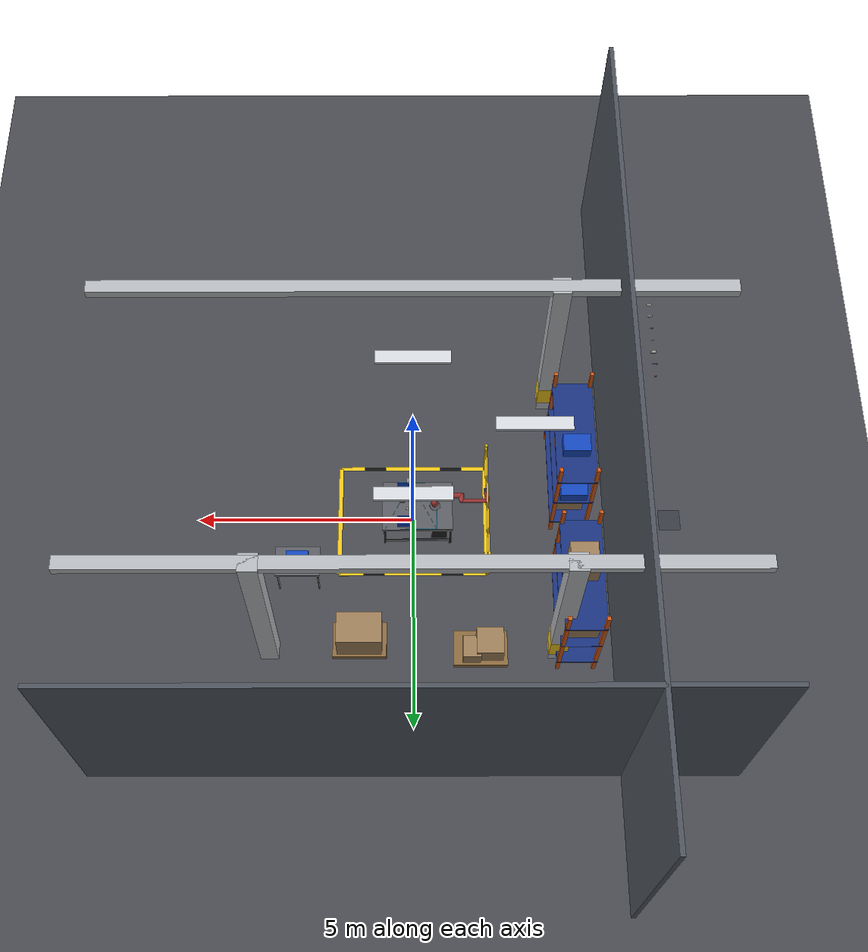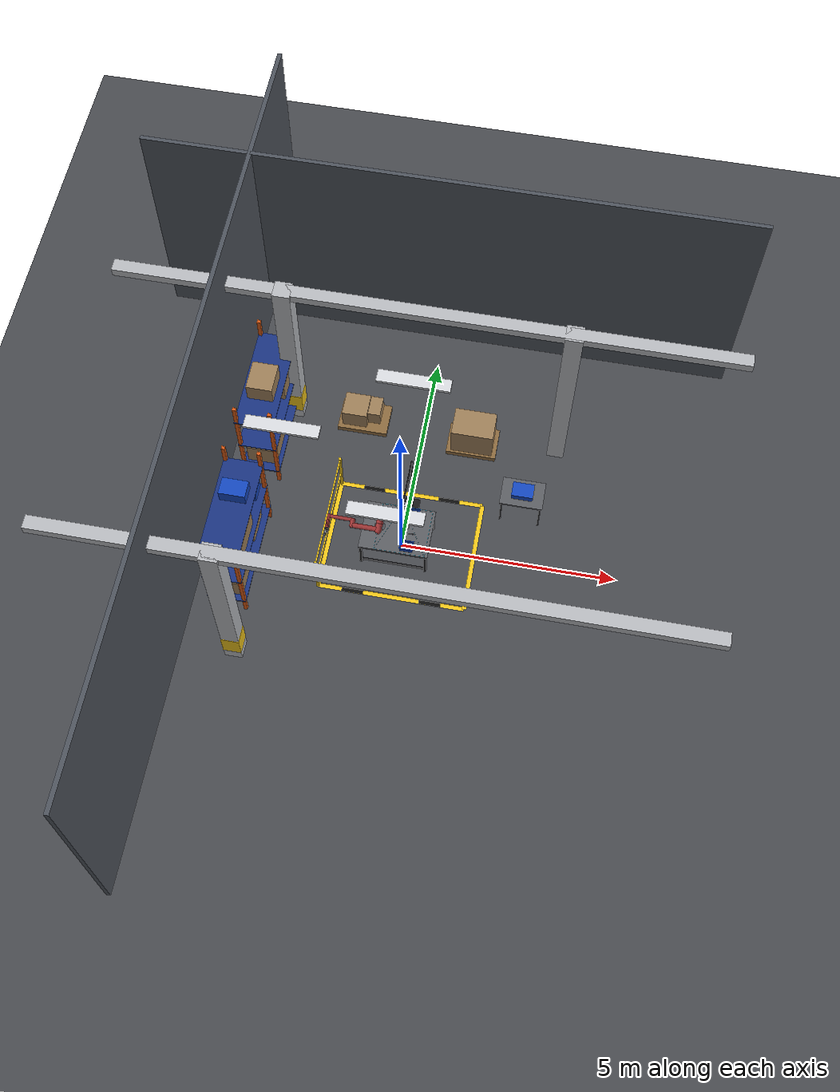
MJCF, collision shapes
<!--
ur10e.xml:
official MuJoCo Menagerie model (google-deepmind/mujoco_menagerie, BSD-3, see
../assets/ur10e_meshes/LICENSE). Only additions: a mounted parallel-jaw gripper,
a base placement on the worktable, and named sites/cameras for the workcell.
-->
<mujoco model="volvo_sorting_workcell">
  <include file="../robots/ur10e.xml"/>

  <option timestep="0.001" integrator="implicitfast" cone="elliptic" impratio="10" noslip_iterations="3"/>

  <visual>
    <global offwidth="1280" offheight="960" azimuth="150" elevation="-25"/>
    <quality shadowsize="4096" offsamples="4"/>
    <headlight ambient="0.35 0.35 0.38" diffuse="0.45 0.45 0.45" specular="0.1 0.1 0.1"/>
    <map znear="0.01" zfar="60" shadowclip="3" shadowscale="0.6"/>
    <rgba haze="0.12 0.13 0.15 1"/>
  </visual>

  <statistic center="0.0 0 0.9" extent="2.4"/>

  <asset>
    <texture type="skybox" builtin="gradient" rgb1="0.16 0.17 0.19" rgb2="0.05 0.05 0.06" width="512" height="3072"/>
    <texture name="floor_tex" type="2d" builtin="checker" rgb1="0.30 0.31 0.33" rgb2="0.26 0.27 0.29" mark="edge" markrgb="0.36 0.37 0.39" width="512" height="512"/>
    <material name="floor_mat" texture="floor_tex" texrepeat="12 12" texuniform="true" reflectance="0.15" specular="0.2" shininess="0.3"/>
    <texture name="wall_tex" type="2d" builtin="flat" rgb1="0.55 0.57 0.60" width="64" height="64"/>
    <material name="wall_mat" texture="wall_tex" rgba="0.55 0.57 0.60 1"/>
    <material name="table_mat" rgba="0.36 0.37 0.39 1" specular="0.4" shininess="0.5" reflectance="0.1"/>
    <material name="table_frame_mat" rgba="0.12 0.12 0.13 1" specular="0.3"/>
    <material name="bin_blue" rgba="0.08 0.28 0.75 1" specular="0.3" shininess="0.4"/>
    <material name="bin_blue_dark" rgba="0.06 0.20 0.55 1"/>
    <material name="steel_dark" rgba="0.30 0.31 0.33 1" specular="0.8" shininess="0.8"/>
    <material name="steel_zinc" rgba="0.62 0.63 0.60 1" specular="0.9" shininess="0.7"/>
    <material name="safety_yellow" rgba="0.95 0.78 0.10 1"/>
    <material name="safety_black" rgba="0.05 0.05 0.05 1"/>
    <material name="rack_orange" rgba="0.85 0.35 0.08 1"/>
    <material name="rack_blue" rgba="0.10 0.20 0.50 1"/>
    <material name="pallet_wood" rgba="0.55 0.42 0.25 1"/>
    <material name="cardboard" rgba="0.62 0.50 0.35 1"/>
    <material name="column_mat" rgba="0.72 0.73 0.75 1" specular="0.2"/>
    <material name="fixture_mat" rgba="0.85 0.86 0.88 1" emission="0.9"/>
    <material name="tripod_mat" rgba="0.10 0.10 0.11 1" specular="0.5"/>
    <material name="camera_body_mat" rgba="0.74 0.75 0.78 1" specular="0.6" shininess="0.5"/>
    <material name="camera_dark_mat" rgba="0.06 0.06 0.07 1" specular="0.4"/>
    <material name="cable_mat" rgba="0.02 0.02 0.02 1"/>
  </asset>

  <worldbody>
    <!-- ================= Lighting ================= -->
    <light name="key" pos="1.5 -1.5 4.0" dir="-0.35 0.35 -1" directional="true" diffuse="0.55 0.55 0.55" specular="0.25 0.25 0.25" castshadow="true"/>
    <light name="fill" pos="-2 2 3.5" dir="0.4 -0.4 -1" directional="false" diffuse="0.35 0.35 0.38" specular="0.05 0.05 0.05" castshadow="false"/>
    <light name="cell_spot" pos="0.0 0 2.9" dir="0 0 -1" directional="false" diffuse="0.5 0.5 0.5" specular="0.15 0.15 0.15" cutoff="55" exponent="8" castshadow="false"/>

    <!-- ================= Floor / walls ================= -->
    <geom name="floor" type="plane" size="0 0 0.1" material="floor_mat" friction="1 0.005 0.0001"/>
    <geom name="wall_back" type="box" pos="-4.5 0 3" size="0.05 9 3" material="wall_mat" contype="0" conaffinity="0"/>
    <geom name="wall_left" type="box" pos="0 6 3" size="7 0.05 3" material="wall_mat" contype="0" conaffinity="0"/>

    <!-- Safety floor markings around the workcell -->
    <geom name="mark_y0" type="box" pos="0 -1.35 0.001" size="1.7 0.05 0.001" material="safety_yellow" contype="0" conaffinity="0"/>
    <geom name="mark_y1" type="box" pos="0 1.35 0.001" size="1.7 0.05 0.001" material="safety_yellow" contype="0" conaffinity="0"/>
    <geom name="mark_x0" type="box" pos="-1.7 0 0.001" size="0.05 1.35 0.001" material="safety_yellow" contype="0" conaffinity="0"/>
    <geom name="mark_x1" type="box" pos="1.7 0 0.001" size="0.05 1.35 0.001" material="safety_yellow" contype="0" conaffinity="0"/>
    <geom name="mark_b0" type="box" pos="-0.9 -1.35 0.0015" size="0.25 0.05 0.001" material="safety_black" contype="0" conaffinity="0"/>
    <geom name="mark_b1" type="box" pos="0.9 -1.35 0.0015" size="0.25 0.05 0.001" material="safety_black" contype="0" conaffinity="0"/>
    <geom name="mark_b2" type="box" pos="-0.9 1.35 0.0015" size="0.25 0.05 0.001" material="safety_black" contype="0" conaffinity="0"/>
    <geom name="mark_b3" type="box" pos="0.9 1.35 0.0015" size="0.25 0.05 0.001" material="safety_black" contype="0" conaffinity="0"/>

    <!-- ================= Worktable ================= -->
    <geom name="table_top" type="box" pos="-0.1 0 0.775" size="0.8 0.6 0.025" material="table_mat" friction="1.0 0.005 0.0001"/>
    <geom name="table_skirt" type="box" pos="-0.1 0 0.735" size="0.78 0.58 0.015" material="table_frame_mat" contype="0" conaffinity="0"/>
    <geom name="leg0" type="box" pos="-0.85 -0.55 0.36" size="0.03 0.03 0.36" material="table_frame_mat"/>
    <geom name="leg1" type="box" pos="-0.85  0.55 0.36" size="0.03 0.03 0.36" material="table_frame_mat"/>
    <geom name="leg2" type="box" pos=" 0.65 -0.55 0.36" size="0.03 0.03 0.36" material="table_frame_mat"/>
    <geom name="leg3" type="box" pos=" 0.65  0.55 0.36" size="0.03 0.03 0.36" material="table_frame_mat"/>
    <geom name="brace0" type="box" pos="-0.1 -0.55 0.12" size="0.75 0.02 0.02" material="table_frame_mat" contype="0" conaffinity="0"/>
    <geom name="brace1" type="box" pos="-0.1  0.55 0.12" size="0.75 0.02 0.02" material="table_frame_mat" contype="0" conaffinity="0"/>
    <!-- robot mounting plate -->
    <geom name="mount_plate" type="cylinder" pos="-0.5 0 0.803" size="0.12 0.003" material="steel_dark" contype="0" conaffinity="0"/>
    <!-- control cable from base down the table -->
    <geom name="cable0" type="capsule" fromto="-0.62 0.05 0.80 -0.88 0.1 0.72" size="0.008" material="cable_mat" contype="0" conaffinity="0"/>
    <geom name="cable1" type="capsule" fromto="-0.88 0.1 0.72 -0.88 0.12 0.05" size="0.008" material="cable_mat" contype="0" conaffinity="0"/>
    <!-- controller box under the table -->
    <geom name="ctrl_box" type="box" pos="-0.6 0.3 0.25" size="0.18 0.14 0.24" material="table_frame_mat" contype="0" conaffinity="0"/>
    <geom name="ctrl_led" type="box" pos="-0.6 0.441 0.40" size="0.01 0.002 0.004" rgba="0.1 0.9 0.2 1" contype="0" conaffinity="0"/>

    <!-- Spawn zone marking (visual guide) -->
    <site name="spawn_zone" type="box" pos="0.175 0 0.8005" size="0.20 0.24 0.0004" rgba="0.9 0.9 0.9 0.10" group="4"/>

    <!-- ================= Bins (blue) ================= -->
    <!-- Bin A: bracket target. inner 0.28 x 0.20, wall height 0.12 -->
    <body name="bin_a" pos="0.20 0.42 0.80">
      <geom name="bin_a_floor" type="box" pos="0 0 0.004" size="0.15 0.11 0.004" material="bin_blue_dark"/>
      <geom name="bin_a_w0" type="box" pos="0 0.106 0.06" size="0.15 0.004 0.06" material="bin_blue"/>
      <geom name="bin_a_w1" type="box" pos="0 -0.106 0.06" size="0.15 0.004 0.06" material="bin_blue"/>
      <geom name="bin_a_w2" type="box" pos="0.146 0 0.06" size="0.004 0.11 0.06" material="bin_blue"/>
      <geom name="bin_a_w3" type="box" pos="-0.146 0 0.06" size="0.004 0.11 0.06" material="bin_blue"/>
      <geom name="bin_a_rim0" type="box" pos="0 0.11 0.121" size="0.158 0.008 0.003" material="bin_blue" contype="0" conaffinity="0"/>
      <geom name="bin_a_rim1" type="box" pos="0 -0.11 0.121" size="0.158 0.008 0.003" material="bin_blue" contype="0" conaffinity="0"/>
      <geom name="bin_a_rim2" type="box" pos="0.15 0 0.121" size="0.008 0.118 0.003" material="bin_blue" contype="0" conaffinity="0"/>
      <geom name="bin_a_rim3" type="box" pos="-0.15 0 0.121" size="0.008 0.118 0.003" material="bin_blue" contype="0" conaffinity="0"/>
      <site name="bin_a_center" pos="0 0 0.06" type="box" size="0.14 0.10 0.06" rgba="0 1 0 0.0" group="4"/>
    </body>
    <!-- Bin B: bolt target -->
    <body name="bin_b" pos="0.20 -0.42 0.80">
      <geom name="bin_b_floor" type="box" pos="0 0 0.004" size="0.15 0.11 0.004" material="bin_blue_dark"/>
      <geom name="bin_b_w0" type="box" pos="0 0.106 0.06" size="0.15 0.004 0.06" material="bin_blue"/>
      <geom name="bin_b_w1" type="box" pos="0 -0.106 0.06" size="0.15 0.004 0.06" material="bin_blue"/>
      <geom name="bin_b_w2" type="box" pos="0.146 0 0.06" size="0.004 0.11 0.06" material="bin_blue"/>
      <geom name="bin_b_w3" type="box" pos="-0.146 0 0.06" size="0.004 0.11 0.06" material="bin_blue"/>
      <geom name="bin_b_rim0" type="box" pos="0 0.11 0.121" size="0.158 0.008 0.003" material="bin_blue" contype="0" conaffinity="0"/>
      <geom name="bin_b_rim1" type="box" pos="0 -0.11 0.121" size="0.158 0.008 0.003" material="bin_blue" contype="0" conaffinity="0"/>
      <geom name="bin_b_rim2" type="box" pos="0.15 0 0.121" size="0.008 0.118 0.003" material="bin_blue" contype="0" conaffinity="0"/>
      <geom name="bin_b_rim3" type="box" pos="-0.15 0 0.121" size="0.008 0.118 0.003" material="bin_blue" contype="0" conaffinity="0"/>
      <site name="bin_b_center" pos="0 0 0.06" type="box" size="0.14 0.10 0.06" rgba="1 0 0 0.0" group="4"/>
    </body>

    <!-- ================= Automotive components ================= -->
    <!-- L-bracket: 120 x 60 x 12 mm plate with a 50 mm flange, zinc-plated steel, ~0.36 kg -->
    <body name="bracket" pos="0.10 0.08 0.83">
      <freejoint name="bracket_free"/>
      <inertial pos="0.012 0 0.008" mass="0.36" diaginertia="2.0e-4 4.5e-4 5.0e-4"/>
      <geom name="bracket_plate" type="box" size="0.060 0.030 0.006" material="steel_zinc" mass="0.26" friction="0.9 0.005 0.0001"/>
      <geom name="bracket_flange" type="box" pos="0.054 0 0.031" size="0.006 0.030 0.025" material="steel_zinc" mass="0.10" friction="0.9 0.005 0.0001"/>
      <geom name="bracket_hole0" type="cylinder" pos="-0.035 0 0.0061" size="0.007 0.0002" rgba="0.15 0.15 0.15 1" contype="0" conaffinity="0" mass="0"/>
      <geom name="bracket_hole1" type="cylinder" pos="0.005 0 0.0061" size="0.007 0.0002" rgba="0.15 0.15 0.15 1" contype="0" conaffinity="0" mass="0"/>
      <site name="bracket_site" pos="0.0 0 0.012" group="4"/>
    </body>
    <!-- M20 x 100 hex bolt, black oxide steel, ~0.22 kg. Capsule shaft + box hex head: analytic
         (capsule-box / box-box) collisions, which are far more robust than cylinder-box. -->
    <body name="bolt" pos="0.25 -0.08 0.83">
      <freejoint name="bolt_free"/>
      <!-- explicit inertia: the axial inertia of a thin bolt (~1e-5) is raised to 1.5e-4 for
           numerical stability of the free-body rotational DOF (see ASSUMPTIONS.md) -->
      <inertial pos="-0.012 0 0" mass="0.22" diaginertia="1.5e-4 3.0e-4 3.0e-4"/>
      <geom name="bolt_shaft" type="capsule" size="0.010 0.040" quat="0.7071 0 0.7071 0" material="steel_dark" mass="0.16" friction="0.9 0.005 0.0001"/>
      <geom name="bolt_head" type="box" pos="-0.058 0 0" size="0.008 0.015 0.013" material="steel_dark" mass="0.06" friction="0.9 0.005 0.0001"/>
      <geom name="bolt_head_vis" type="box" pos="-0.058 0 0" size="0.008 0.015 0.013" quat="0.8660 0.5 0 0" material="steel_dark" mass="0" contype="0" conaffinity="0"/>
      <geom name="bolt_head_vis2" type="box" pos="-0.058 0 0" size="0.008 0.015 0.013" quat="0.8660 -0.5 0 0" material="steel_dark" mass="0" contype="0" conaffinity="0"/>
      <site name="bolt_site" pos="0 0 0" group="4"/>
    </body>

    <body name="bracket_flat" pos="-6.0 -6.0 0.05">
      <freejoint name="bracket_flat_free"/>
      <inertial pos="0 0 0" mass="0.30" diaginertia="1.2e-4 4.0e-4 5.0e-4"/>
      <geom name="bracket_flat_plate" type="box" size="0.060 0.030 0.004" material="steel_zinc" mass="0.30" friction="0.9 0.005 0.0001"/>
      <geom name="bracket_flat_hole0" type="cylinder" pos="-0.035 0 0.0041" size="0.007 0.0002" rgba="0.15 0.15 0.15 1" contype="0" conaffinity="0" mass="0"/>
      <geom name="bracket_flat_hole1" type="cylinder" pos="0.035 0 0.0041" size="0.007 0.0002" rgba="0.15 0.15 0.15 1" contype="0" conaffinity="0" mass="0"/>
    </body>
    <body name="bracket_u" pos="-6.0 -5.65 0.05">
      <freejoint name="bracket_u_free"/>
      <inertial pos="0 0 0.012" mass="0.34" diaginertia="2.5e-4 4.0e-4 5.0e-4"/>
      <geom name="bracket_u_base" type="box" size="0.050 0.025 0.003" material="steel_zinc" mass="0.16" friction="0.9 0.005 0.0001"/>
      <geom name="bracket_u_w0" type="box" pos="0 0.022 0.015" size="0.050 0.003 0.015" material="steel_zinc" mass="0.09" friction="0.9 0.005 0.0001"/>
      <geom name="bracket_u_w1" type="box" pos="0 -0.022 0.015" size="0.050 0.003 0.015" material="steel_zinc" mass="0.09" friction="0.9 0.005 0.0001"/>
    </body>
    <body name="bolt_socket" pos="-6.0 -5.30 0.05">
      <freejoint name="bolt_socket_free"/>
      <inertial pos="-0.010 0 0" mass="0.15" diaginertia="1.0e-4 2.0e-4 2.0e-4"/>
      <geom name="bolt_socket_shaft" type="capsule" size="0.008 0.032" quat="0.7071 0 0.7071 0" material="steel_dark" mass="0.11" friction="0.9 0.005 0.0001"/>
      <geom name="bolt_socket_head" type="box" pos="-0.046 0 0" size="0.008 0.012 0.012" material="steel_dark" mass="0.04" friction="0.9 0.005 0.0001"/>
      <geom name="bolt_socket_head_vis" type="box" pos="-0.046 0 0" size="0.008 0.012 0.012" quat="0.9239 0.3827 0 0" material="steel_dark" mass="0" contype="0" conaffinity="0"/>
      <geom name="bolt_socket_recess" type="box" pos="-0.0541 0 0" size="0.0002 0.004 0.004" rgba="0.05 0.05 0.05 1" mass="0" contype="0" conaffinity="0"/>
    </body>
    <body name="bolt_m12" pos="-6.0 -4.95 0.05">
      <freejoint name="bolt_m12_free"/>
      <inertial pos="-0.008 0 0" mass="0.07" diaginertia="6.0e-5 1.0e-4 1.0e-4"/>
      <geom name="bolt_m12_shaft" type="capsule" size="0.006 0.024" quat="0.7071 0 0.7071 0" material="steel_zinc" mass="0.05" friction="0.9 0.005 0.0001"/>
      <geom name="bolt_m12_head" type="box" pos="-0.034 0 0" size="0.005 0.010 0.009" material="steel_zinc" mass="0.02" friction="0.9 0.005 0.0001"/>
      <geom name="bolt_m12_head_vis" type="box" pos="-0.034 0 0" size="0.005 0.010 0.009" quat="0.8660 0.5 0 0" material="steel_zinc" mass="0" contype="0" conaffinity="0"/>
    </body>
    <body name="bracket_extra" pos="-6.0 -4.60 0.05">
      <freejoint name="bracket_extra_free"/>
      <inertial pos="0.012 0 0.008" mass="0.36" diaginertia="2.0e-4 4.5e-4 5.0e-4"/>
      <geom name="bracket_extra_plate" type="box" size="0.060 0.030 0.006" material="steel_zinc" mass="0.26" friction="0.9 0.005 0.0001" priority="1" solref="0.03 1" solimp="0.9 0.95 0.01 0.5 2"/>
      <geom name="bracket_extra_flange" type="box" pos="0.054 0 0.031" size="0.006 0.030 0.025" material="steel_zinc" mass="0.10" friction="0.9 0.005 0.0001" priority="1" solref="0.03 1" solimp="0.9 0.95 0.01 0.5 2"/>
    </body>
    <body name="bolt_extra" pos="-6.0 -4.25 0.05">
      <freejoint name="bolt_extra_free"/>
      <inertial pos="-0.012 0 0" mass="0.22" diaginertia="1.5e-4 3.0e-4 3.0e-4"/>
      <geom name="bolt_extra_shaft" type="capsule" size="0.010 0.040" quat="0.7071 0 0.7071 0" material="steel_dark" mass="0.16" friction="0.9 0.005 0.0001" priority="1" solref="0.03 1" solimp="0.9 0.95 0.01 0.5 2"/>
      <geom name="bolt_extra_head" type="box" pos="-0.058 0 0" size="0.008 0.015 0.013" material="steel_dark" mass="0.06" friction="0.9 0.005 0.0001" priority="1" solref="0.03 1" solimp="0.9 0.95 0.01 0.5 2"/>
    </body>
    <!-- rejection case: a red plastic cap that is not part of the sorting task -->
    <body name="reject_cap" pos="-6.0 -3.90 0.05">
      <freejoint name="reject_cap_free"/>
      <inertial pos="0 0 0" mass="0.05" diaginertia="2.0e-5 2.0e-5 2.5e-5"/>
      <geom name="reject_cap_body" type="box" size="0.020 0.020 0.012" rgba="0.82 0.19 0.18 1" mass="0.05" friction="0.8 0.005 0.0001" priority="1" solref="0.03 1" solimp="0.9 0.95 0.01 0.5 2"/>
      <geom name="reject_cap_top" type="box" pos="0 0 0.013" size="0.014 0.014 0.001" rgba="0.95 0.35 0.30 1" mass="0" contype="0" conaffinity="0"/>
    </body>
    <!-- photo booth for catalog thumbnails: parts are moved here one at a time at start-up and rendered by catalog_cam -->
    <geom name="booth_floor" type="box" pos="-6.0 0.0 0.001" size="0.25 0.25 0.001" rgba="0.22 0.23 0.26 1" contype="0" conaffinity="0"/>
    <camera name="catalog_cam" pos="-5.86 -0.14 0.19" xyaxes="0.7071 -0.7071 0 0.4 0.4 0.8246" fovy="42"/>

    <!-- ================= Overhead camera on boom ================= -->
    <geom name="tripod_pole" type="cylinder" fromto="0.05 1.05 0 0.05 1.05 2.15" size="0.03" material="tripod_mat"/>
    <geom name="tripod_foot0" type="box" pos="0.05 1.05 0.02" size="0.18 0.18 0.02" material="tripod_mat"/>
    <geom name="tripod_boom" type="cylinder" fromto="0.05 1.05 2.12 0.05 0.0 2.12" size="0.02" material="tripod_mat" contype="0" conaffinity="0"/>
    <body name="overhead_camera_unit" pos="0.05 0.0 2.00">
      <geom name="cam_housing" type="box" pos="0 0 0.060" size="0.070 0.050 0.038" material="camera_body_mat" contype="0" conaffinity="0"/>
      <geom name="cam_housing_top" type="box" pos="0 0 0.101" size="0.035 0.035 0.004" material="camera_dark_mat" contype="0" conaffinity="0"/>
      <geom name="cam_lens_barrel" type="cylinder" pos="0 0 0.013" size="0.028 0.012" material="camera_dark_mat" contype="0" conaffinity="0"/>
      <geom name="cam_lens_ring" type="cylinder" pos="0 0 0.0015" size="0.030 0.0012" rgba="0.75 0.76 0.78 1" contype="0" conaffinity="0"/>
      <geom name="cam_lens_glass" type="cylinder" pos="0 0 0.0035" size="0.020 0.0008" rgba="0.15 0.30 0.55 1" contype="0" conaffinity="0"/>
      <geom name="cam_led" type="box" pos="0.060 0.035 0.080" size="0.005 0.005 0.005" rgba="0.95 0.15 0.10 1" contype="0" conaffinity="0"/>
      <geom name="cam_label" type="box" pos="0.0706 0 0.060" size="0.0005 0.030 0.014" material="safety_yellow" contype="0" conaffinity="0"/>
      <geom name="cam_bracket" type="box" pos="0 0 0.112" size="0.012 0.012 0.010" material="tripod_mat" contype="0" conaffinity="0"/>
      <geom name="frustum_e0" type="capsule" fromto="0 0 0  0.585  0.585 -1.199" size="0.0025" rgba="0.25 0.85 1.0 0.55" group="5" contype="0" conaffinity="0"/>
      <geom name="frustum_e1" type="capsule" fromto="0 0 0  0.585 -0.585 -1.199" size="0.0025" rgba="0.25 0.85 1.0 0.55" group="5" contype="0" conaffinity="0"/>
      <geom name="frustum_e2" type="capsule" fromto="0 0 0 -0.585  0.585 -1.199" size="0.0025" rgba="0.25 0.85 1.0 0.55" group="5" contype="0" conaffinity="0"/>
      <geom name="frustum_e3" type="capsule" fromto="0 0 0 -0.585 -0.585 -1.199" size="0.0025" rgba="0.25 0.85 1.0 0.55" group="5" contype="0" conaffinity="0"/>
      <geom name="frustum_f0" type="capsule" fromto=" 0.585  0.585 -1.199  0.585 -0.585 -1.199" size="0.003" rgba="0.25 0.85 1.0 0.7" group="5" contype="0" conaffinity="0"/>
      <geom name="frustum_f1" type="capsule" fromto=" 0.585 -0.585 -1.199 -0.585 -0.585 -1.199" size="0.003" rgba="0.25 0.85 1.0 0.7" group="5" contype="0" conaffinity="0"/>
      <geom name="frustum_f2" type="capsule" fromto="-0.585 -0.585 -1.199 -0.585  0.585 -1.199" size="0.003" rgba="0.25 0.85 1.0 0.7" group="5" contype="0" conaffinity="0"/>
      <geom name="frustum_f3" type="capsule" fromto="-0.585  0.585 -1.199  0.585  0.585 -1.199" size="0.003" rgba="0.25 0.85 1.0 0.7" group="5" contype="0" conaffinity="0"/>
      <geom name="frustum_axis" type="capsule" fromto="0 0 0 0 0 -1.199" size="0.0015" rgba="0.25 0.85 1.0 0.35" group="5" contype="0" conaffinity="0"/>
    </body>
    <geom name="cam_cable" type="capsule" fromto="0.05 0.0 2.09 0.05 1.02 2.10" size="0.005" material="cable_mat" contype="0" conaffinity="0"/>
    <!-- The learning camera (UNCHANGED pose/intrinsics): looks straight down; image 'up' = world +x (robot at image bottom) -->
    <camera name="overhead" pos="0.05 0.0 2.00" quat="0.7071068 0 0 -0.7071068" fovy="52"/>

    <!-- Viewport cameras -->
    <camera name="workcell" pos="1.70 -1.60 1.80" xyaxes="0.6748 0.7380 0.0000 -0.1523 0.1392 0.9785" fovy="55"/>
    <camera name="workcell_front" pos="2.4 0.0 1.6" xyaxes="0 1 0 -0.35 0 0.94" fovy="45"/>
    <camera name="workcell_side" pos="-0.2 -2.6 1.7" xyaxes="1 0 0 0 0.32 0.95" fovy="45"/>

    <!-- ================= Industrial set dressing ================= -->
    <!-- Structural columns -->
    <geom name="col0" type="box" pos="-3.2 -3.2 2.5" size="0.2 0.2 2.5" material="column_mat" contype="0" conaffinity="0"/>
    <geom name="col1" type="box" pos="-3.2  3.2 2.5" size="0.2 0.2 2.5" material="column_mat" contype="0" conaffinity="0"/>
    <geom name="col2" type="box" pos=" 3.2  3.2 2.5" size="0.2 0.2 2.5" material="column_mat" contype="0" conaffinity="0"/>
    <geom name="col_stripe0" type="box" pos="-3.2 -3.2 0.6" size="0.205 0.205 0.3" material="safety_yellow" contype="0" conaffinity="0"/>
    <geom name="col_stripe1" type="box" pos="-3.2  3.2 0.6" size="0.205 0.205 0.3" material="safety_yellow" contype="0" conaffinity="0"/>
    <!-- Ceiling beams and light fixtures -->
    <geom name="beam0" type="box" pos="0 -3.2 4.9" size="7 0.15 0.1" material="column_mat" contype="0" conaffinity="0"/>
    <geom name="beam1" type="box" pos="0  3.2 4.9" size="7 0.15 0.1" material="column_mat" contype="0" conaffinity="0"/>
    <geom name="fixture0" type="box" pos="0 -1.6 4.7" size="0.8 0.15 0.03" material="fixture_mat" contype="0" conaffinity="0"/>
    <geom name="fixture1" type="box" pos="0  1.6 4.7" size="0.8 0.15 0.03" material="fixture_mat" contype="0" conaffinity="0"/>
    <geom name="fixture2" type="box" pos="-2.5 0 4.7" size="0.8 0.15 0.03" material="fixture_mat" contype="0" conaffinity="0"/>
    <!-- Warehouse shelving racks along the back wall -->
    <geom name="rack0_u0" type="box" pos="-4.0 -2.2 1.5" size="0.04 0.04 1.5" material="rack_orange" contype="0" conaffinity="0"/>
    <geom name="rack0_u1" type="box" pos="-4.0  0.2 1.5" size="0.04 0.04 1.5" material="rack_orange" contype="0" conaffinity="0"/>
    <geom name="rack0_u2" type="box" pos="-3.2 -2.2 1.5" size="0.04 0.04 1.5" material="rack_orange" contype="0" conaffinity="0"/>
    <geom name="rack0_u3" type="box" pos="-3.2  0.2 1.5" size="0.04 0.04 1.5" material="rack_orange" contype="0" conaffinity="0"/>
    <geom name="rack0_s0" type="box" pos="-3.6 -1.0 0.45" size="0.45 1.25 0.02" material="rack_blue" contype="0" conaffinity="0"/>
    <geom name="rack0_s1" type="box" pos="-3.6 -1.0 1.45" size="0.45 1.25 0.02" material="rack_blue" contype="0" conaffinity="0"/>
    <geom name="rack0_s2" type="box" pos="-3.6 -1.0 2.45" size="0.45 1.25 0.02" material="rack_blue" contype="0" conaffinity="0"/>
    <geom name="rack0_box0" type="box" pos="-3.6 -1.7 0.75" size="0.35 0.4 0.28" material="cardboard" contype="0" conaffinity="0"/>
    <geom name="rack0_box1" type="box" pos="-3.6 -0.4 0.70" size="0.3 0.35 0.23" material="cardboard" contype="0" conaffinity="0"/>
    <geom name="rack0_box2" type="box" pos="-3.6 -1.2 1.75" size="0.35 0.45 0.28" material="cardboard" contype="0" conaffinity="0"/>
    <geom name="rack0_bin0" type="box" pos="-3.6 0.0 1.62" size="0.3 0.2 0.15" material="bin_blue" contype="0" conaffinity="0"/>
    <geom name="rack0_bin1" type="box" pos="-3.6 -0.6 2.62" size="0.3 0.2 0.15" material="bin_blue" contype="0" conaffinity="0"/>
    <geom name="rack1_u0" type="box" pos="-4.0 1.2 1.5" size="0.04 0.04 1.5" material="rack_orange" contype="0" conaffinity="0"/>
    <geom name="rack1_u1" type="box" pos="-4.0 3.6 1.5" size="0.04 0.04 1.5" material="rack_orange" contype="0" conaffinity="0"/>
    <geom name="rack1_u2" type="box" pos="-3.2 1.2 1.5" size="0.04 0.04 1.5" material="rack_orange" contype="0" conaffinity="0"/>
    <geom name="rack1_u3" type="box" pos="-3.2 3.6 1.5" size="0.04 0.04 1.5" material="rack_orange" contype="0" conaffinity="0"/>
    <geom name="rack1_s0" type="box" pos="-3.6 2.4 0.45" size="0.45 1.25 0.02" material="rack_blue" contype="0" conaffinity="0"/>
    <geom name="rack1_s1" type="box" pos="-3.6 2.4 1.45" size="0.45 1.25 0.02" material="rack_blue" contype="0" conaffinity="0"/>
    <geom name="rack1_s2" type="box" pos="-3.6 2.4 2.45" size="0.45 1.25 0.02" material="rack_blue" contype="0" conaffinity="0"/>
    <geom name="rack1_box0" type="box" pos="-3.6 1.8 0.75" size="0.35 0.45 0.28" material="cardboard" contype="0" conaffinity="0"/>
    <geom name="rack1_box1" type="box" pos="-3.6 3.0 1.72" size="0.35 0.45 0.25" material="cardboard" contype="0" conaffinity="0"/>
    <geom name="rack1_box2" type="box" pos="-3.6 2.2 2.70" size="0.3 0.35 0.23" material="cardboard" contype="0" conaffinity="0"/>
    <!-- Pallets with stacked boxes -->
    <geom name="pallet0" type="box" pos="1.2 3.0 0.07" size="0.6 0.4 0.07" material="pallet_wood" contype="0" conaffinity="0"/>
    <geom name="pallet0_box" type="box" pos="1.2 3.0 0.55" size="0.5 0.35 0.4" material="cardboard" contype="0" conaffinity="0"/>
    <geom name="pallet1" type="box" pos="-1.5 3.2 0.07" size="0.6 0.4 0.07" material="pallet_wood" contype="0" conaffinity="0"/>
    <geom name="pallet1_box0" type="box" pos="-1.7 3.2 0.40" size="0.3 0.3 0.25" material="cardboard" contype="0" conaffinity="0"/>
    <geom name="pallet1_box1" type="box" pos="-1.3 3.3 0.35" size="0.2 0.25 0.2" material="cardboard" contype="0" conaffinity="0"/>
    <!-- Parts trolley / second table in background -->
    <geom name="trolley_top" type="box" pos="2.6 1.4 0.85" size="0.5 0.35 0.02" material="table_mat" contype="0" conaffinity="0"/>
    <geom name="trolley_l0" type="box" pos="2.15 1.1 0.42" size="0.02 0.02 0.42" material="table_frame_mat" contype="0" conaffinity="0"/>
    <geom name="trolley_l1" type="box" pos="3.05 1.1 0.42" size="0.02 0.02 0.42" material="table_frame_mat" contype="0" conaffinity="0"/>
    <geom name="trolley_l2" type="box" pos="2.15 1.7 0.42" size="0.02 0.02 0.42" material="table_frame_mat" contype="0" conaffinity="0"/>
    <geom name="trolley_l3" type="box" pos="3.05 1.7 0.42" size="0.02 0.02 0.42" material="table_frame_mat" contype="0" conaffinity="0"/>
    <geom name="trolley_bin" type="box" pos="2.6 1.4 0.95" size="0.25 0.18 0.08" material="bin_blue" contype="0" conaffinity="0"/>
    <!-- Safety fence posts (partial perimeter, out of the way) -->
    <geom name="fence_p0" type="box" pos="-1.7 -1.35 0.6" size="0.03 0.03 0.6" material="safety_yellow" contype="0" conaffinity="0"/>
    <geom name="fence_p1" type="box" pos="-1.7  1.35 0.6" size="0.03 0.03 0.6" material="safety_yellow" contype="0" conaffinity="0"/>
    <geom name="fence_r0" type="box" pos="-1.7 0 1.15" size="0.015 1.35 0.015" material="safety_yellow" contype="0" conaffinity="0"/>
    <geom name="fence_r1" type="box" pos="-1.7 0 0.55" size="0.015 1.35 0.015" material="safety_yellow" contype="0" conaffinity="0"/>
  </worldbody>

  <keyframe>
    <!-- home: gripper hovering ~0.25 m above the spawn zone, pointing down -->
    <key name="home"
         qpos="2.8706 -1.5639 2.0604 -2.0673 -1.5708 -1.8418 0 0  0.10 0.08 0.803 1 0 0 0  0.25 -0.08 0.808 1 0 0 0  -6.0 -6.0 0.05 1 0 0 0  -6.0 -5.65 0.05 1 0 0 0  -6.0 -5.30 0.05 1 0 0 0  -6.0 -4.95 0.05 1 0 0 0  -6.0 -4.60 0.05 1 0 0 0  -6.0 -4.25 0.05 1 0 0 0  -6.0 -3.90 0.05 1 0 0 0"
         ctrl="2.8706 -1.5639 2.0604 -2.0673 -1.5708 -1.8418 0"/>
  </keyframe>
</mujoco>

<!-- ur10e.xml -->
<mujoco model="ur10e">
  <compiler angle="radian" meshdir="../assets/ur10e_meshes" autolimits="true"/>

  <default>
    <default class="ur10e">
      <material specular="0.5" shininess="0.25"/>
      <joint axis="0 1 0" range="-6.28319 6.28319" armature="0.1"/>
      <position ctrlrange="-6.2831 6.2831"/>
      <general biastype="affine" ctrlrange="-6.2831 6.2831" gainprm="5000" biasprm="0 -5000 -500"/>
      <default class="size4">
        <joint damping="10"/>
        <general forcerange="-330 330"/>
      </default>
      <default class="size3">
        <joint damping="5"/>
        <general forcerange="-150 150"/>
        <default class="size3_limited">
          <joint range="-3.1415 3.1415"/>
          <general ctrlrange="-3.1415 3.1415"/>
        </default>
      </default>
      <default class="size2">
        <joint damping="2"/>
        <general forcerange="-56 56"/>
      </default>
      <default class="visual">
        <geom type="mesh" contype="0" conaffinity="0" group="2"/>
      </default>
      <default class="collision">
        <geom type="capsule" group="3" rgba="0.6 0.2 0.2 0.35"/>
        <default class="eef_collision">
          <geom type="cylinder"/>
        </default>
      </default>
      <site size="0.001" rgba="0.5 0.5 0.5 0.3" group="4"/>
    </default>
  </default>

  <asset>
    <material class="ur10e" name="ur_black" rgba="0.033 0.033 0.033 1"/>
    <material class="ur10e" name="ur_jointgray" rgba="0.278 0.278 0.278 1"/>
    <material class="ur10e" name="ur_linkgray" rgba="0.82 0.82 0.82 1"/>
    <material class="ur10e" name="ur_blue" rgba="0.49 0.678 0.8 1"/>

    <mesh file="base_0.obj"/>
    <mesh file="base_1.obj"/>
    <mesh file="shoulder_0.obj"/>
    <mesh file="shoulder_1.obj"/>
    <mesh file="shoulder_2.obj"/>
    <mesh file="upperarm_0.obj"/>
    <mesh file="upperarm_1.obj"/>
    <mesh file="upperarm_2.obj"/>
    <mesh file="upperarm_3.obj"/>
    <mesh file="forearm_0.obj"/>
    <mesh file="forearm_1.obj"/>
    <mesh file="forearm_2.obj"/>
    <mesh file="forearm_3.obj"/>
    <mesh file="wrist1_0.obj"/>
    <mesh file="wrist1_1.obj"/>
    <mesh file="wrist1_2.obj"/>
    <mesh file="wrist2_0.obj"/>
    <mesh file="wrist2_1.obj"/>
    <mesh file="wrist2_2.obj"/>
    <mesh file="wrist3.obj"/>
  </asset>

  <worldbody>
    <body name="robot_base" pos="-0.50 0 0.80" quat="0 0 0 -1" childclass="ur10e">
      <inertial mass="4.0" pos="0 0 0" diaginertia="0.0061063308908 0.0061063308908 0.01125"/>
      <geom mesh="base_0" material="ur_black" class="visual"/>
      <geom mesh="base_1" material="ur_jointgray" class="visual"/>
      <body name="shoulder_link" gravcomp="1" pos="0 0 0.181">
        <inertial pos="0 0 0" mass="7.778" diaginertia="0.0314743 0.0314743 0.0218756"/>
        <joint name="shoulder_pan_joint" class="size4" axis="0 0 1"/>
        <geom mesh="shoulder_0" material="ur_blue" class="visual"/>
        <geom mesh="shoulder_1" material="ur_black" class="visual"/>
        <geom mesh="shoulder_2" material="ur_jointgray" class="visual"/>
        <geom class="collision" size="0.078 0.05" pos="0 0 -0.02"/>
        <body name="upper_arm_link" gravcomp="1" pos="0 0.176 0" quat="1 0 1 0">
          <inertial pos="0 0 0.3065" mass="12.93" diaginertia="0.423074 0.423074 0.0363656"/>
          <joint name="shoulder_lift_joint" class="size4"/>
          <geom mesh="upperarm_0" material="ur_black" class="visual"/>
          <geom mesh="upperarm_1" material="ur_jointgray" class="visual"/>
          <geom mesh="upperarm_2" material="ur_blue" class="visual"/>
          <geom mesh="upperarm_3" material="ur_linkgray" class="visual"/>
          <geom class="collision" pos="0 -0.05 0" quat="1 1 0 0" size="0.078 0.08"/>
          <geom class="collision" size="0.06 0.3" pos="0 0 0.3"/>
          <body name="forearm_link" gravcomp="1" pos="0 -0.137 0.613">
            <inertial pos="0 0 0.2855" mass="3.87" diaginertia="0.11059 0.11059 0.0108844"/>
            <joint name="elbow_joint" class="size3_limited"/>
            <geom mesh="forearm_0" material="ur_blue" class="visual"/>
            <geom mesh="forearm_1" material="ur_black" class="visual"/>
            <geom mesh="forearm_2" material="ur_jointgray" class="visual"/>
            <geom mesh="forearm_3" material="ur_linkgray" class="visual"/>
            <geom class="collision" pos="0 0.08 0" quat="1 1 0 0" size="0.058 0.065"/>
            <geom class="collision" size="0.043 0.28" pos="0 0 0.29"/>
            <body name="wrist_1_link" gravcomp="1" pos="0 0 0.571" quat="1 0 1 0">
              <inertial pos="0 0.135 0" quat="0.5 0.5 -0.5 0.5" mass="1.96"
                diaginertia="0.0055125 0.00510825 0.00510825"/>
              <joint name="wrist_1_joint" class="size2"/>
              <geom mesh="wrist1_0" material="ur_black" class="visual"/>
              <geom mesh="wrist1_1" material="ur_blue" class="visual"/>
              <geom mesh="wrist1_2" material="ur_jointgray" class="visual"/>
              <geom class="collision" pos="0 0.06 0" quat="1 1 0 0" size="0.05 0.07"/>
              <body name="wrist_2_link" gravcomp="1" pos="0 0.135 0">
                <inertial pos="0 0 0.12" quat="0.5 0.5 -0.5 0.5" mass="1.96"
                  diaginertia="0.0055125 0.00510825 0.00510825"/>
                <joint name="wrist_2_joint" axis="0 0 1" class="size2"/>
                <geom mesh="wrist2_0" material="ur_black" class="visual"/>
                <geom mesh="wrist2_1" material="ur_blue" class="visual"/>
                <geom mesh="wrist2_2" material="ur_jointgray" class="visual"/>
                <geom class="collision" size="0.046 0.065" pos="0 0 0.05"/>
                <geom class="collision" pos="0 0.028 0.12" quat="1 1 0 0" size="0.046 0.043"/>
                <body name="wrist_3_link" gravcomp="1" pos="0 0 0.12">
                  <inertial pos="0 0.092 0" quat="0 1 -1 0" mass="0.202"
                    diaginertia="0.000204525 0.000144346 0.000144346"/>
                  <joint name="wrist_3_joint" class="size2"/>
                  <geom material="ur_linkgray" mesh="wrist3" class="visual"/>
                  <geom class="eef_collision" pos="0 0.097 0" quat="1 1 0 0" size="0.046 0.02"/>
                  <site name="attachment_site" pos="0 0.1 0" quat="-1 1 0 0"/>
                  <!-- ============ Parallel-jaw gripper (custom, see ASSUMPTIONS.md) ============ -->
                  <body name="gripper_base" gravcomp="1" pos="0 0.117 0" quat="-1 1 0 0">
                    <inertial pos="0 0 0.05" mass="1.2" diaginertia="0.003 0.003 0.0015"/>
                    <geom name="grip_flange" type="cylinder" size="0.04 0.006" pos="0 0 0.006" rgba="0.15 0.15 0.15 1" group="2" contype="0" conaffinity="0"/>
                    <geom name="grip_body" type="box" size="0.04 0.028 0.028" pos="0 0 0.04" rgba="0.2 0.2 0.22 1"/>
                    <geom name="grip_palm" type="box" size="0.046 0.075 0.011" pos="0 0 0.079" rgba="0.1 0.1 0.1 1"/>
                    <geom name="grip_rail" type="box" size="0.012 0.08 0.004" pos="0 0 0.094" rgba="0.6 0.6 0.62 1" group="2" contype="0" conaffinity="0"/>
                    <site name="pinch" pos="0 0 0.162" type="sphere" size="0.006" rgba="0.1 0.9 0.3 0.6" group="4"/>
                    <site name="tcp" pos="0 0 0.162" group="4"/>
                    <camera name="gripper_cam" pos="0.06 0 0.08" quat="0.5 -0.5 0.5 0.5" fovy="70"/>
                    <body name="left_finger" gravcomp="1" pos="0 0.07 0.098">
                      <inertial pos="0 0 0.035" mass="0.2" diaginertia="0.0002 0.0002 0.0001"/>
                      <joint name="left_finger_joint" type="slide" axis="0 -1 0" range="0 0.07" damping="30" armature="0.05"/>
                      <geom name="left_finger_geom" type="box" size="0.014 0.006 0.036" pos="0 0 0.036" rgba="0.55 0.55 0.58 1"/>
                      <geom name="left_pad" type="box" size="0.013 0.0025 0.028" pos="0 -0.0085 0.045" rgba="0.12 0.12 0.12 1"
                            friction="1.6 0.02 0.001" condim="4" solimp="0.9 0.95 0.001" solref="0.01 1" priority="2"/>
                    </body>
                    <body name="right_finger" gravcomp="1" pos="0 -0.07 0.098">
                      <inertial pos="0 0 0.035" mass="0.2" diaginertia="0.0002 0.0002 0.0001"/>
                      <joint name="right_finger_joint" type="slide" axis="0 1 0" range="0 0.07" damping="30" armature="0.05"/>
                      <geom name="right_finger_geom" type="box" size="0.014 0.006 0.036" pos="0 0 0.036" rgba="0.55 0.55 0.58 1"/>
                      <geom name="right_pad" type="box" size="0.013 0.0025 0.028" pos="0 0.0085 0.045" rgba="0.12 0.12 0.12 1"
                            friction="1.6 0.02 0.001" condim="4" solimp="0.9 0.95 0.001" solref="0.01 1" priority="2"/>
                    </body>
                  </body>
                </body>
              </body>
            </body>
          </body>
        </body>
      </body>
    </body>
  </worldbody>

  <contact>
    <exclude body1="gripper_base" body2="left_finger"/>
    <exclude body1="gripper_base" body2="right_finger"/>
    <exclude body1="wrist_3_link" body2="gripper_base"/>
    <exclude body1="wrist_2_link" body2="gripper_base"/>
  </contact>

  <equality>
    <joint name="finger_coupling" joint1="left_finger_joint" joint2="right_finger_joint" polycoef="0 1 0 0 0" solimp="0.9 0.95 0.001" solref="0.02 1"/>
  </equality>

  <actuator>
    <general class="size4" name="shoulder_pan" joint="shoulder_pan_joint"/>
    <general class="size4" name="shoulder_lift" joint="shoulder_lift_joint"/>
    <general class="size3_limited" name="elbow" joint="elbow_joint"/>
    <general class="size2" name="wrist_1" joint="wrist_1_joint"/>
    <general class="size2" name="wrist_2" joint="wrist_2_joint"/>
    <general class="size2" name="wrist_3" joint="wrist_3_joint"/>
    <!-- gripper: ctrl = finger travel per finger (0 = fully open, 140 mm aperture; 0.07 = closed) -->
    <general name="gripper" joint="left_finger_joint" biastype="affine" ctrlrange="0 0.07"
             gainprm="3000" biasprm="0 -3000 -150" forcerange="-60 60"/>
  </actuator>
</mujoco>
